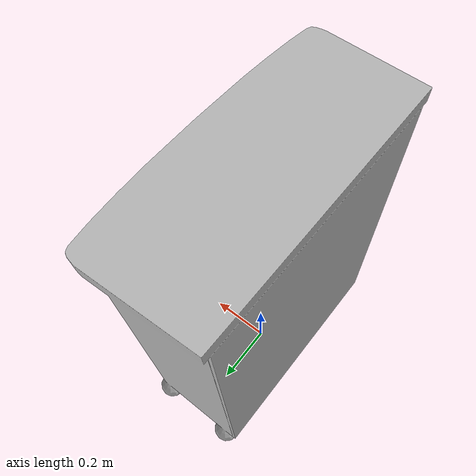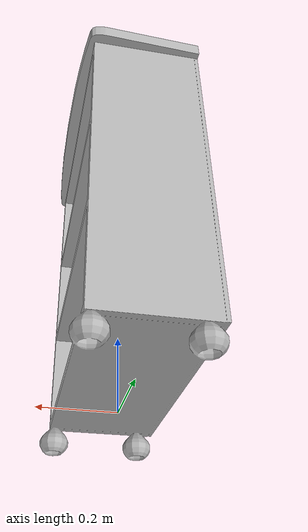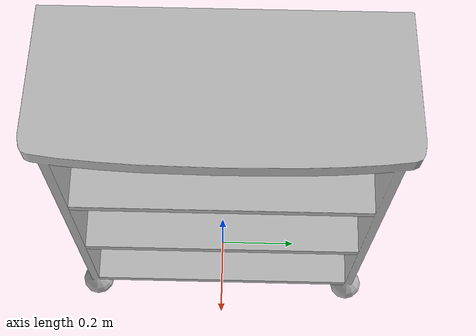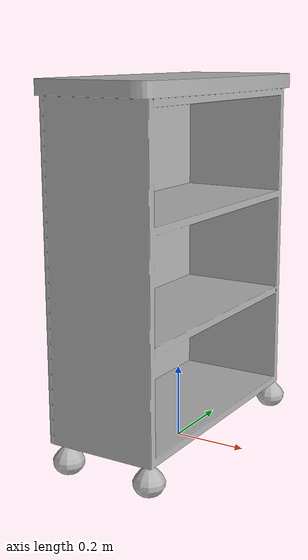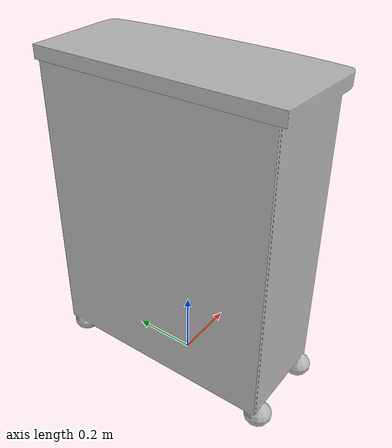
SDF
<?xml version='1.0'?>
<sdf version='1.4'>
  <model name='s__393'>
    <pose>0 0 0 0 0 0</pose>
    <static>true</static>
    <link name='link'>
      <collision name='collision'>
        <pose>0 0 0 0 0 0</pose>
        <geometry>
          <box>
            <size>0.34 0.76994 2</size>
          </box>
        </geometry>
      </collision>
      <visual name='visual'>
        <pose>0 0 0 0 0 0</pose>
        <geometry>
          <mesh><uri>model://s__393/s__393.dae</uri></mesh>
        </geometry>
      </visual>
    </link>
  </model>
</sdf>
